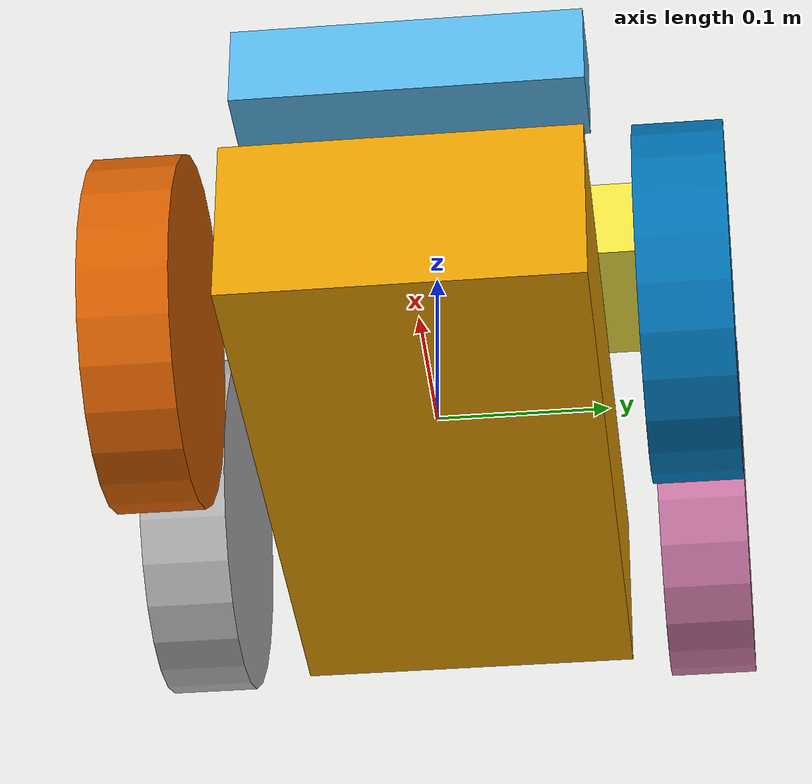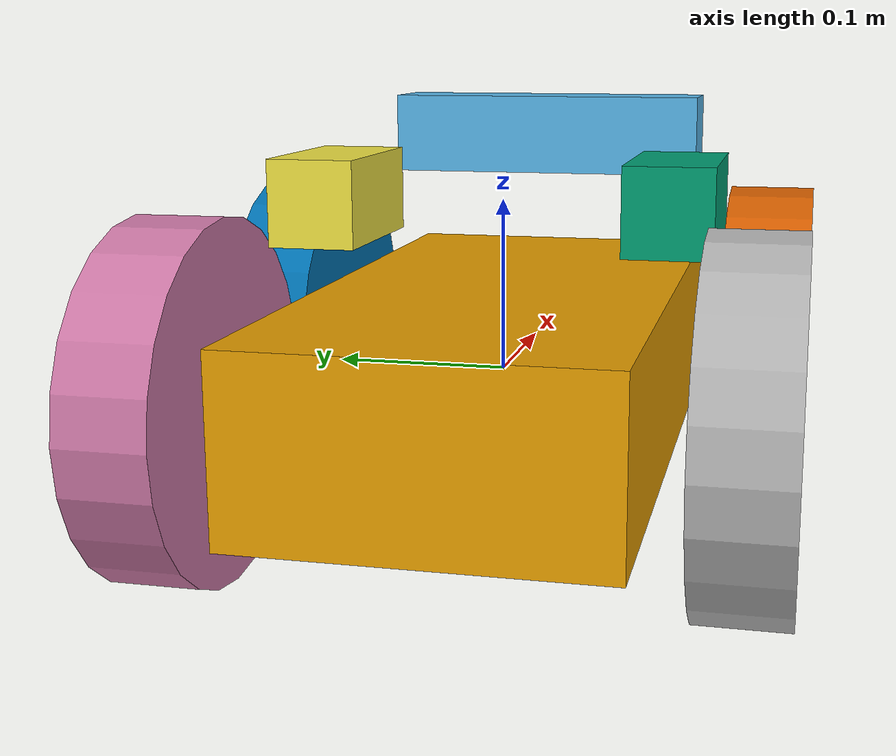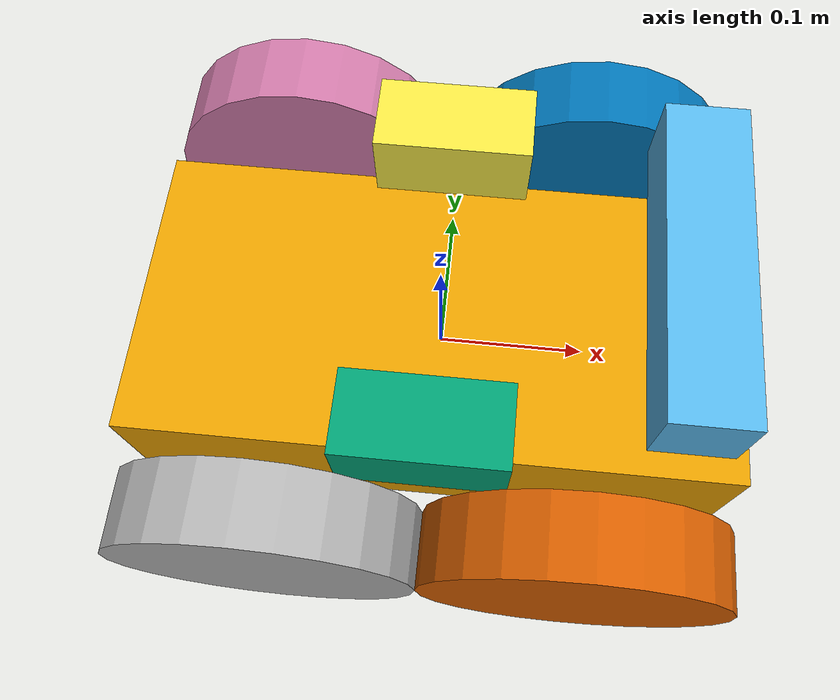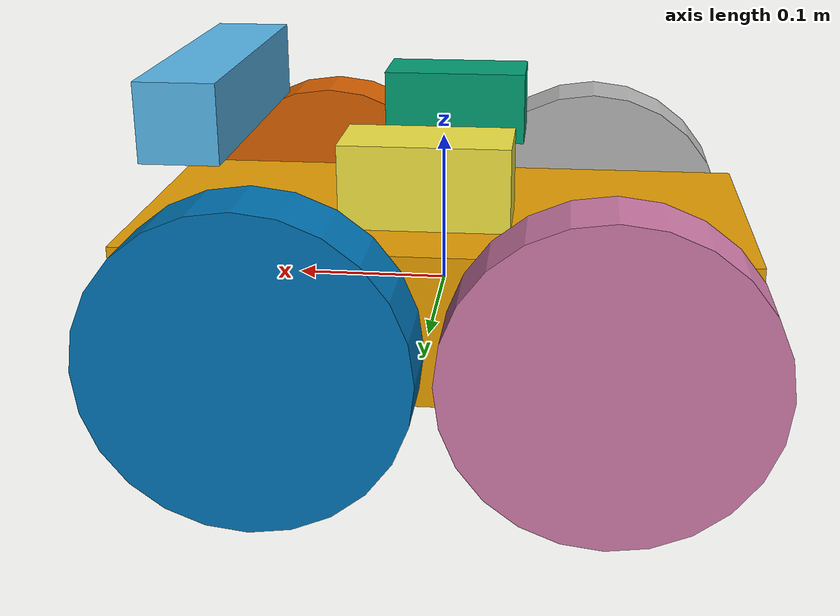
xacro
<?xml version='1.0'?>

<robot name="mybot" xmlns:xacro="http://www.ros.org/wiki/xacro">

<xacro:include filename="$(find mybot_description)/urdf/mybot.gazebo" />

  <link name="chassis">
    <pose>0 0 0.1 0 0 0</pose>
    <inertial>
      <mass value="10.0"/>
      <origin xyz="0.0 0 0.1" rpy=" 0 0 0"/>
      <inertia
          ixx="0.09" ixy="0" ixz="0"
          iyy="0.09" iyz="0"
          izz="0.09"
      />
    </inertial>

    <collision name='collision'>
      <geometry>
        <box size=".4 .2 .1"/>
      </geometry>
    </collision>

    <visual name='chassis_visual'>
      <origin xyz="0 0 0" rpy=" 0 0 0"/>
      <geometry>
        <box size=".4 .2 .1"/>
      </geometry>
    </visual>

  </link>

<link name="camera">

	<visual name="camera_visual">
                <origin xyz="0 0 0.028575" rpy="0 0 3.1414" />
                <geometry>
                        <box size="0.05 0.2 0.05" />
                </geometry>
        </visual>

        <inertial>
                <mass value="0.1" />
                <origin xyz="0 0 0.0001" rpy="0 0 3.1414"/>
                <inertia ixx="0.0001" ixy="0.0" ixz="0.0"
                         iyy="0.0001" iyz="0.0"
                         izz="0.0001" />
        </inertial>
</link>

<link name="Rultrasonic">

	<visual name="Rultrasonic_visual">
                <origin xyz="0 0 0" rpy="0 0 0" />
                <geometry>
                        <box size="0.05 0.1 0.05" />
                </geometry>
        </visual>

        <inertial>
                <mass value="0.1" />
                <origin xyz="0 0 0" rpy="0 0 0"/>
                <inertia ixx="0.0001" ixy="0.0" ixz="0.0"
                         iyy="0.0001" iyz="0.0"
                         izz="0.0001" />
        </inertial>
</link>

<link name="Lultrasonic">

	<visual name="Lultrasonic_visual">
                <origin xyz="0 0 0" rpy="0 0 0" />
                <geometry>
                        <box size="0.05 0.1 0.05" />
                </geometry>
        </visual>

        <inertial>
                <mass value="0.1" />
                <origin xyz="0 0 0" rpy="0 0 0"/>
                <inertia ixx="0.0001" ixy="0.0" ixz="0.0"
                         iyy="0.0001" iyz="0.0"
                         izz="0.0001" />
        </inertial>
</link>

  <link name="left_wheel">
    <collision name="collision">
      <origin xyz="0 0 0" rpy="0 1.5707 1.5707"/>
      <geometry>
        <cylinder radius="0.1" length="0.05"/>
      </geometry>
    </collision>
    <visual name="left_wheel_visual">
      <origin xyz="0 0 0" rpy="0 1.5707 1.5707"/>
      <geometry>
        <cylinder radius="0.1" length="0.05"/>
      </geometry>
    </visual>
    <inertial>
      <origin xyz="0 0 0" rpy="0 1.5707 1.5707"/>
      <mass value="5"/>
      <cylinder_inertia m="5" r="0.1" h="0.05"/>
      <inertia
        ixx="0.013" ixy="0.0" ixz="0.0"
        iyy="0.013" iyz="0.0"
        izz="0.013"/>
    </inertial>
  </link>

  <link name="right_wheel">
    <collision name="collision">
      <origin xyz="0 0 0" rpy="0 1.5707 1.5707"/>
      <geometry>
        <cylinder radius="0.1" length="0.05"/>
      </geometry>
    </collision>
    <visual name="right_wheel_visual">
      <origin xyz="0 0 0" rpy="0 1.5707 1.5707"/>
      <geometry>
        <cylinder radius="0.1" length="0.05"/>
      </geometry>
    </visual>
    <inertial>
      <origin xyz="0 0 0" rpy="0 1.5707 1.5707"/>
      <mass value="5"/>
      <cylinder_inertia m="5" r="0.1" h="0.05"/>
      <inertia
        ixx="0.013" ixy="0.0" ixz="0.0"
        iyy="0.013" iyz="0.0"
        izz="0.013"/>
    </inertial>
  </link>

  <link name="left_fwheel">
    <collision name="collision">
      <origin xyz="0 0 0" rpy="0 1.5707 1.5707"/>
      <geometry>
        <cylinder radius="0.1" length="0.05"/>
      </geometry>
    </collision>
    <visual name="left_wheel_fvisual">
      <origin xyz="0 0 0" rpy="0 1.5707 1.5707"/>
      <geometry>
        <cylinder radius="0.1" length="0.05"/>
      </geometry>
    </visual>
    <inertial>
      <origin xyz="0 0 0" rpy="0 1.5707 1.5707"/>
      <mass value="5"/>
      <cylinder_inertia m="5" r="0.1" h="0.05"/>
      <inertia
        ixx="0.013" ixy="0.0" ixz="0.0"
        iyy="0.013" iyz="0.0"
        izz="0.013"/>
    </inertial>
  </link>

  <link name="right_fwheel">
    <collision name="collision">
      <origin xyz="0 0 0" rpy="0 1.5707 1.5707"/>
      <geometry>
        <cylinder radius="0.1" length="0.05"/>
      </geometry>
    </collision>
    <visual name="right_wheel_fvisual">
      <origin xyz="0 0 0" rpy="0 1.5707 1.5707"/>
      <geometry>
        <cylinder radius="0.1" length="0.05"/>
      </geometry>
    </visual>
    <inertial>
      <origin xyz="0 0 0" rpy="0 1.5707 1.5707"/>
      <mass value="5"/>
      <cylinder_inertia m="5" r="0.1" h="0.05"/>
      <inertia
        ixx="0.013" ixy="0.0" ixz="0.0"
        iyy="0.013" iyz="0.0"
        izz="0.013"/>
    </inertial>
  </link>

  <joint type="continuous" name="left_wheel_hinge">
    <origin xyz="0.1 0.15 0" rpy="0 0 0"/>
    <child link="left_wheel"/>
    <parent link="chassis"/>
    <axis xyz="0 1 0" rpy="0 0 0"/>
    <limit effort="100" velocity="100"/>
    <joint_properties damping="0.0" friction="1.0"/>
  </joint>

  <joint type="continuous" name="right_wheel_hinge">
    <origin xyz="0.1 -0.15 0" rpy="0 0 0"/>
    <child link="right_wheel"/>
    <parent link="chassis"/>
    <axis xyz="0 1 0" rpy="0 0 0"/>
    <limit effort="100" velocity="100"/>
    <joint_properties damping="0.0" friction="1.0"/>
  </joint>

 <joint type="continuous" name="left_wheel_fhinge">
    <origin xyz="-0.11 0.15 0" rpy="0 0 0"/>
    <child link="left_fwheel"/>
    <parent link="chassis"/>
    <axis xyz="0 1 0" rpy="0 0 0"/>
    <limit effort="100" velocity="100"/>
    <joint_properties damping="0.0" friction="1.0"/>
  </joint>

  <joint type="continuous" name="right_wheel_fhinge">
    <origin xyz="-0.1 -0.15 0" rpy="0 0 0"/>
    <child link="right_fwheel"/>
    <parent link="chassis"/>
    <axis xyz="0 1 0" rpy="0 0 0"/>
    <limit effort="100" velocity="100"/>
    <joint_properties damping="0.0" friction="1"/>
  </joint>

<joint name="kinect_joint" type="fixed">
        <origin xyz="0.15 0 0.1" rpy="0 0 0" />
        <child link="camera" />
        <parent link="chassis" />
</joint>

<joint name="Rultrasonic_joint" type="fixed">
        <origin xyz="0 -0.1 0.1" rpy="0 0 4.71239" />
        <child link="Rultrasonic" />
        <parent link="chassis" />
</joint>

<joint name="Lultrasonic_joint" type="fixed">
        <origin xyz="0 0.1 0.1" rpy="0 0 1.5707" />
        <child link="Lultrasonic" />
        <parent link="chassis" />
</joint>

</robot>
